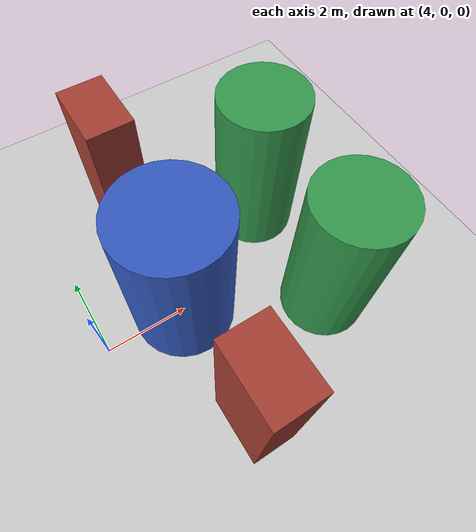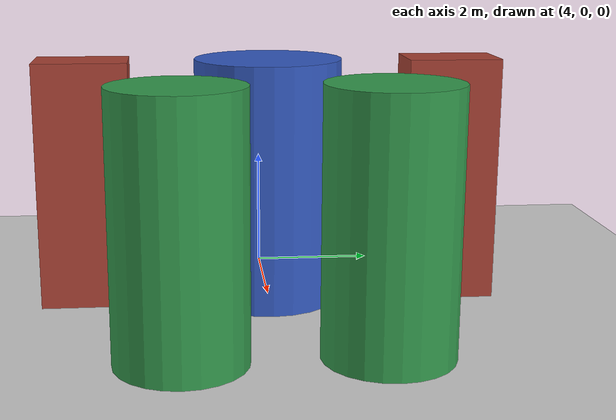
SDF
<?xml version="1.0"?>
<sdf version="1.6">
  <world name="ego_multi_obstacles">
    <include><uri>model://sun</uri></include>
    <include><uri>model://ground_plane</uri></include>

    <physics name="default_physics" type="ode">
      <real_time_update_rate>250</real_time_update_rate>
      <max_step_size>0.004</max_step_size>
    </physics>

    <!-- A sparse, deterministic corridor. Every obstacle is both visual and
         collision geometry, so onboard Gazebo lidars observe what is shown. -->
    <model name="wall_left">
      <static>true</static><pose>6 3 2 0 0 0</pose>
      <link name="link">
        <collision name="collision"><geometry><box><size>1 1.5 4</size></box></geometry></collision>
        <visual name="visual"><geometry><box><size>1 1.5 4</size></box></geometry><material><ambient>0.65 0.25 0.2 1</ambient></material></visual>
      </link>
    </model>
    <model name="wall_right">
      <static>true</static><pose>6 -3 2 0 0 0</pose>
      <link name="link">
        <collision name="collision"><geometry><box><size>1 1.5 4</size></box></geometry></collision>
        <visual name="visual"><geometry><box><size>1 1.5 4</size></box></geometry><material><ambient>0.65 0.25 0.2 1</ambient></material></visual>
      </link>
    </model>
    <model name="pillar_center">
      <static>true</static><pose>6 0 2 0 0 0</pose>
      <link name="link">
        <collision name="collision"><geometry><cylinder><radius>1.2</radius><length>4</length></cylinder></geometry></collision>
        <visual name="visual"><geometry><cylinder><radius>1.2</radius><length>4</length></cylinder></geometry><material><ambient>0.2 0.35 0.75 1</ambient></material></visual>
      </link>
    </model>
    <model name="pillar_upper">
      <static>true</static><pose>9 1.5 2 0 0 0</pose>
      <link name="link">
        <collision name="collision"><geometry><cylinder><radius>1</radius><length>4</length></cylinder></geometry></collision>
        <visual name="visual"><geometry><cylinder><radius>1</radius><length>4</length></cylinder></geometry><material><ambient>0.2 0.6 0.3 1</ambient></material></visual>
      </link>
    </model>
    <model name="pillar_lower">
      <static>true</static><pose>9 -1.5 2 0 0 0</pose>
      <link name="link">
        <collision name="collision"><geometry><cylinder><radius>1</radius><length>4</length></cylinder></geometry></collision>
        <visual name="visual"><geometry><cylinder><radius>1</radius><length>4</length></cylinder></geometry><material><ambient>0.2 0.6 0.3 1</ambient></material></visual>
      </link>
    </model>
  </world>
</sdf>
